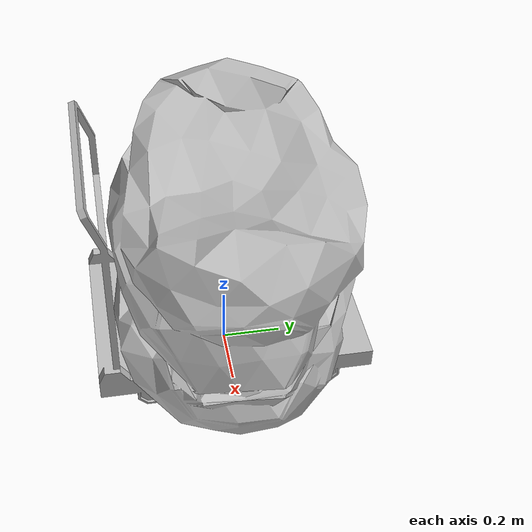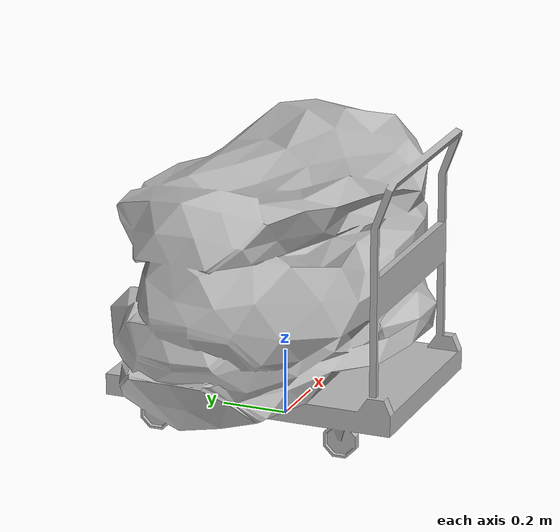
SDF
<?xml version="1.0"?>

<sdf version="1.6">
  <model name='ParkingTrolleyMin'>
    <link name="body">
      <pose>0 0 0 0 0 0</pose>

        <visual name="visual">
          <pose>0 0 0 0 0 0</pose>
          <geometry>
            <mesh><uri>model://ParkingTrolleyMax/meshes/trolleymax.obj</uri></mesh>
          </geometry>
        </visual>

        <collision name="collision">
          <pose>0 0 0 0 0 0</pose>
          <geometry>
            <mesh><uri>model://ParkingTrolleyMax/meshes/trolleymax.obj</uri></mesh>
          </geometry>
        </collision>

    </link>
  </model>
</sdf>
